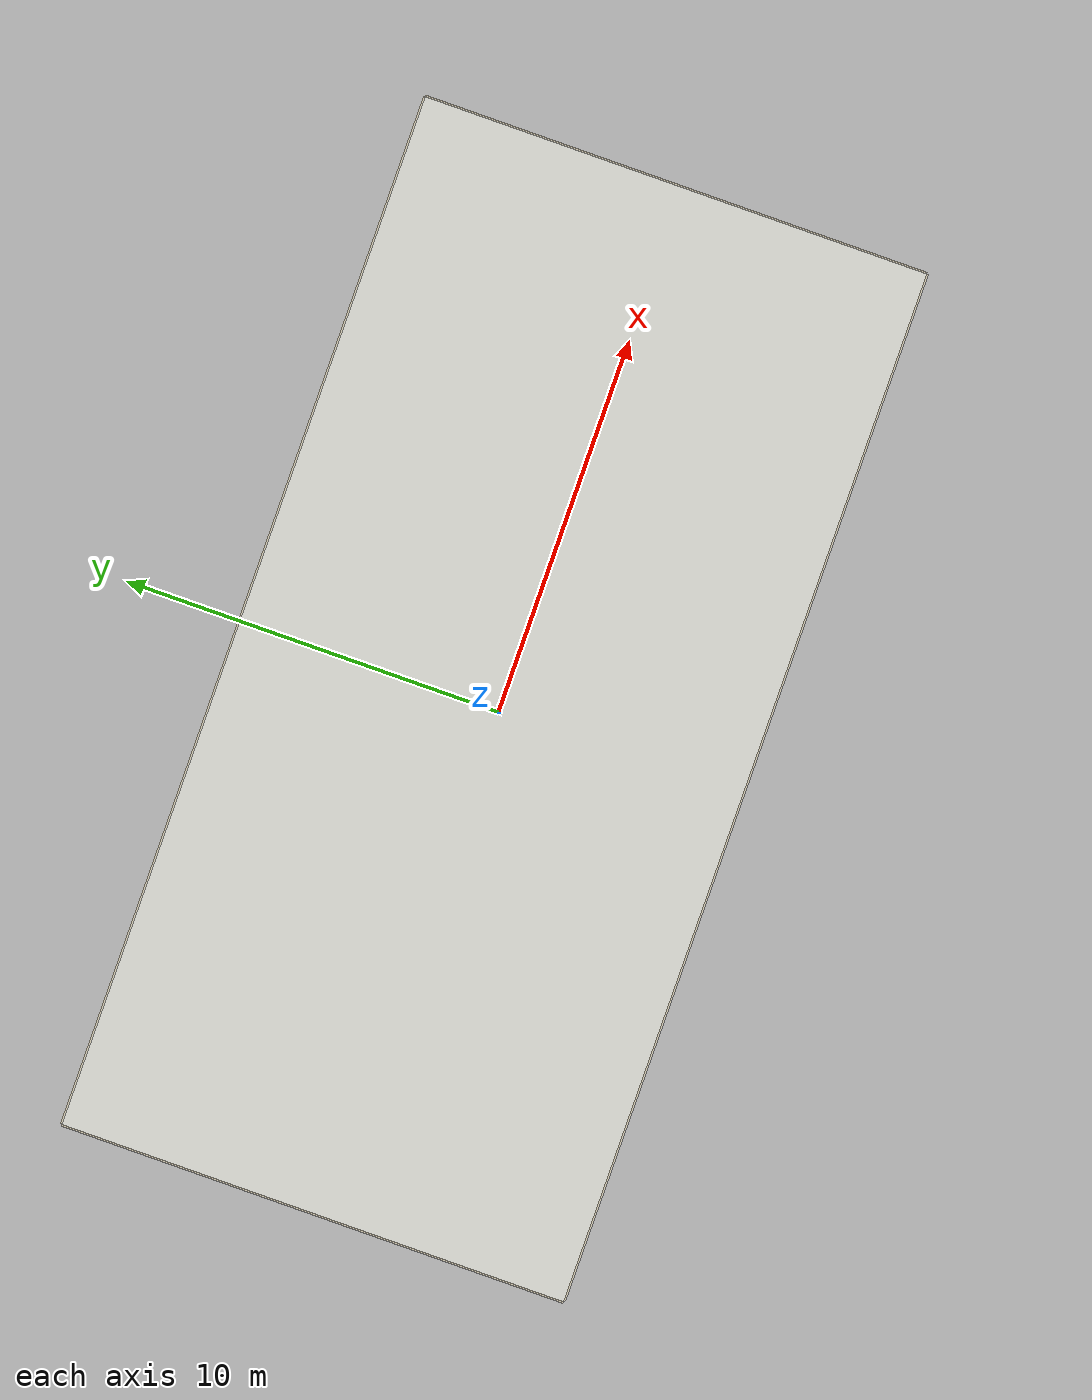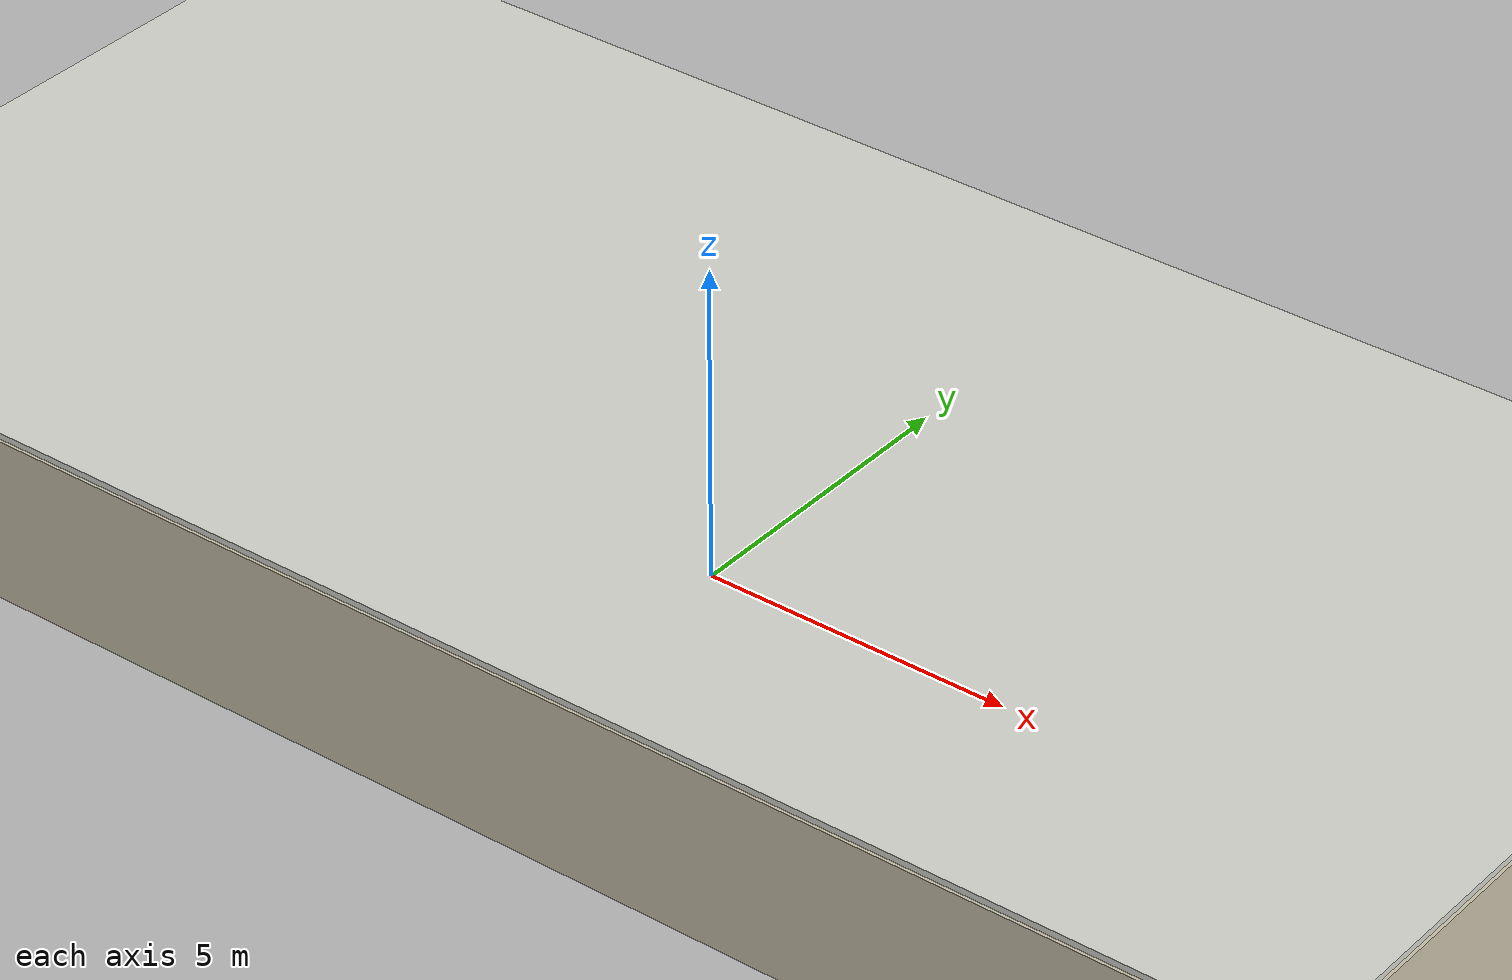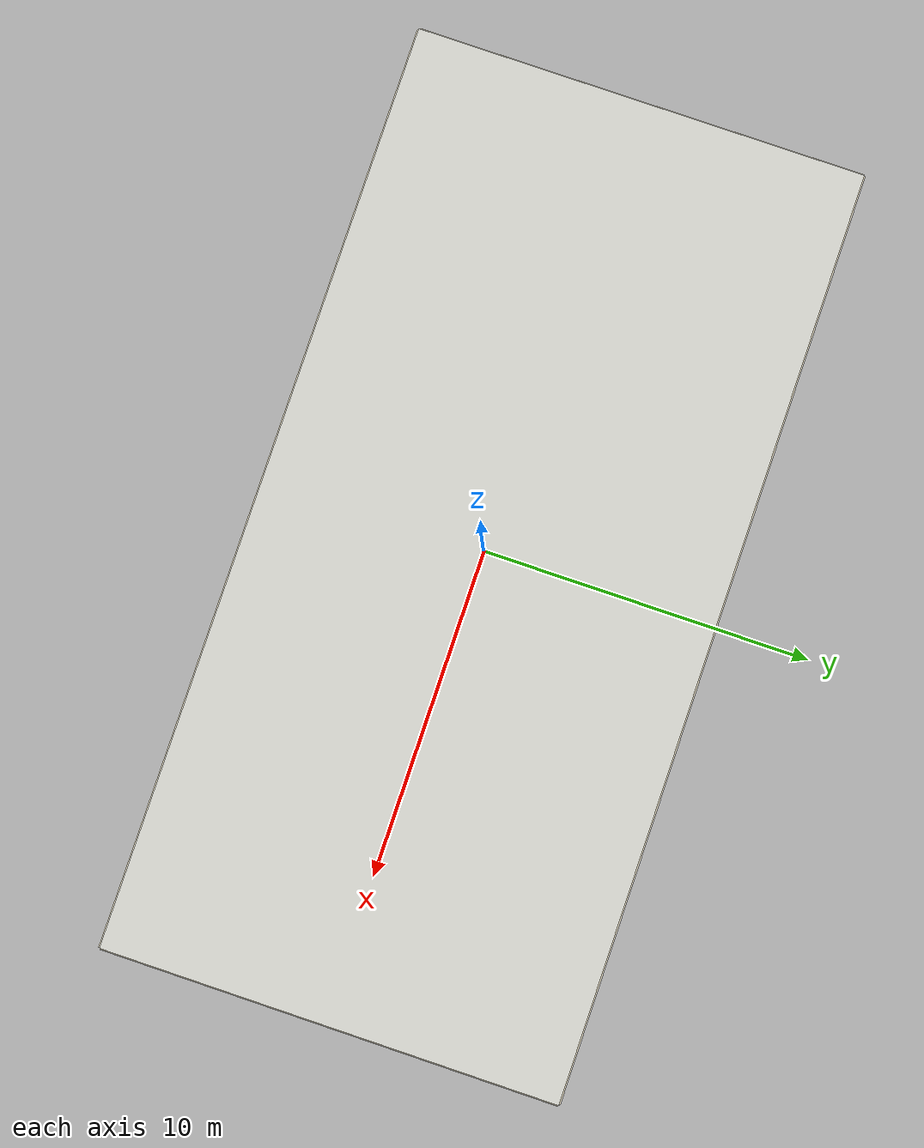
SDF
<?xml version="1.0" ?>
<sdf version='1.7'>
  <world name='default'>
    <plugin name='gazebo_ros_state' filename='libgazebo_ros_state.so'>
      <ros>
        <namespace>/</namespace>
      </ros>
      <update_rate>1000.0</update_rate>
    </plugin>

    <light name='sun' type='directional'>
      <cast_shadows>1</cast_shadows>
      <pose>0 0 10 0 -0 0</pose>
      <diffuse>0.28 0.28 0.27 1</diffuse>
      <specular>0.2 0.2 0.2 1</specular>
      <attenuation>
        <range>1000</range>
        <constant>0.9</constant>
        <linear>0.01</linear>
        <quadratic>0.001</quadratic>
      </attenuation>
      <direction>0.05 0.02 -1.0</direction>
      <spot>
        <inner_angle>0</inner_angle>
        <outer_angle>0</outer_angle>
        <falloff>0</falloff>
      </spot>
    </light>
    <model name='ground_plane'>
      <static>1</static>
      <link name='link'>
        <collision name='collision'>
          <geometry>
            <plane>
              <normal>0 0 1</normal>
              <size>100 100</size>
            </plane>
          </geometry>
          <surface>
            <friction>
              <ode>
                <mu>100</mu>
                <mu2>50</mu2>
              </ode>
              <torsional>
                <ode/>
              </torsional>
            </friction>
            <contact>
              <ode/>
            </contact>
            <bounce/>
          </surface>
          <max_contacts>10</max_contacts>
        </collision>
        <self_collide>0</self_collide>
        <enable_wind>0</enable_wind>
        <kinematic>0</kinematic>
      </link>
    </model>
    <gravity>0 0 -9.8</gravity>
    <magnetic_field>6e-06 2.3e-05 -4.2e-05</magnetic_field>
    <atmosphere type='adiabatic'/>
    <physics type='ode'>
      <max_step_size>0.001</max_step_size>
      <real_time_factor>1</real_time_factor>
      <real_time_update_rate>1000</real_time_update_rate>
    </physics>
    <scene>
      <ambient>0.81 0.81 0.79 1</ambient>
      <background>0.80 0.77 0.68 1</background>
      <shadows>1</shadows>
    </scene>
    <audio>
      <device>default</device>
    </audio>
    <wind/>
    <spherical_coordinates>
      <surface_model>EARTH_WGS84</surface_model>
      <latitude_deg>0</latitude_deg>
      <longitude_deg>0</longitude_deg>
      <elevation>0</elevation>
      <heading_deg>0</heading_deg>
    </spherical_coordinates>
    <model name='lab_05'>
    <static>1</static>
    <pose>0 0 0.001 0 0 0</pose>
    <link name='floor'>
      <visual name='floor_visual'>
        <cast_shadows>0</cast_shadows>
        <geometry><mesh><uri>model://lab_05/meshes/floor.obj</uri></mesh></geometry>
      </visual>
    </link>
    <link name='ducts'>
      <visual name='ducts_visual'>
        <geometry><mesh><uri>model://lab_05/meshes/ducts.obj</uri></mesh></geometry>
      </visual>
      <collision name='ducts_collision'>
        <geometry><mesh><uri>model://lab_05/meshes/ducts.obj</uri></mesh></geometry>
      </collision>
    </link>
    <link name='wall_0'>
      <pose>0.292 6.840 1.350 0 0 0.000</pose>
      <visual name='wall_0_visual'>
        <cast_shadows>0</cast_shadows>
        <geometry><box><size>27.137 0.100 2.700</size></box></geometry>
        <material><ambient>0.80 0.77 0.68 1</ambient><diffuse>0.80 0.77 0.68 1</diffuse></material>
      </visual>
    </link>
    <link name='wall_1'>
      <pose>0.292 -6.400 1.350 0 0 0.000</pose>
      <visual name='wall_1_visual'>
        <cast_shadows>0</cast_shadows>
        <geometry><box><size>27.137 0.100 2.700</size></box></geometry>
        <material><ambient>0.80 0.77 0.68 1</ambient><diffuse>0.80 0.77 0.68 1</diffuse></material>
      </visual>
    </link>
    <link name='wall_2'>
      <pose>-13.277 0.220 1.350 0 0 0.000</pose>
      <visual name='wall_2_visual'>
        <cast_shadows>0</cast_shadows>
        <geometry><box><size>0.100 13.240 2.700</size></box></geometry>
        <material><ambient>0.80 0.77 0.68 1</ambient><diffuse>0.80 0.77 0.68 1</diffuse></material>
      </visual>
    </link>
    <link name='wall_3'>
      <pose>13.860 0.220 1.350 0 0 0.000</pose>
      <visual name='wall_3_visual'>
        <cast_shadows>0</cast_shadows>
        <geometry><box><size>0.100 13.240 2.700</size></box></geometry>
        <material><ambient>0.80 0.77 0.68 1</ambient><diffuse>0.80 0.77 0.68 1</diffuse></material>
      </visual>
    </link>
    <link name='ceiling'>
      <pose>0.292 0.220 2.750 0 0 0.000</pose>
      <visual name='ceiling_visual'>
        <cast_shadows>0</cast_shadows>
        <geometry><box><size>27.137 13.240 0.100</size></box></geometry>
        <material><ambient>0.85 0.85 0.82 1</ambient><diffuse>0.85 0.85 0.82 1</diffuse></material>
      </visual>
    </link>
    <link name='panel_0_0'>
      <pose>-11.777 -4.900 2.690 0 0 0.000</pose>
      <visual name='panel_0_0_visual'>
        <cast_shadows>0</cast_shadows>
        <geometry><box><size>1.200 0.600 0.020</size></box></geometry>
        <material><ambient>1.00 1.00 1.00 1</ambient><diffuse>1.00 1.00 1.00 1</diffuse><emissive>1.00 1.00 1.00 1</emissive></material>
      </visual>
    </link>
    <link name='panel_0_1'>
      <pose>-11.777 -2.500 2.690 0 0 0.000</pose>
      <visual name='panel_0_1_visual'>
        <cast_shadows>0</cast_shadows>
        <geometry><box><size>1.200 0.600 0.020</size></box></geometry>
        <material><ambient>1.00 1.00 1.00 1</ambient><diffuse>1.00 1.00 1.00 1</diffuse><emissive>1.00 1.00 1.00 1</emissive></material>
      </visual>
    </link>
    <link name='panel_0_2'>
      <pose>-11.777 -0.100 2.690 0 0 0.000</pose>
      <visual name='panel_0_2_visual'>
        <cast_shadows>0</cast_shadows>
        <geometry><box><size>1.200 0.600 0.020</size></box></geometry>
        <material><ambient>1.00 1.00 1.00 1</ambient><diffuse>1.00 1.00 1.00 1</diffuse><emissive>1.00 1.00 1.00 1</emissive></material>
      </visual>
    </link>
    <link name='panel_0_3'>
      <pose>-11.777 2.300 2.690 0 0 0.000</pose>
      <visual name='panel_0_3_visual'>
        <cast_shadows>0</cast_shadows>
        <geometry><box><size>1.200 0.600 0.020</size></box></geometry>
        <material><ambient>1.00 1.00 1.00 1</ambient><diffuse>1.00 1.00 1.00 1</diffuse><emissive>1.00 1.00 1.00 1</emissive></material>
      </visual>
    </link>
    <link name='panel_0_4'>
      <pose>-11.777 4.700 2.690 0 0 0.000</pose>
      <visual name='panel_0_4_visual'>
        <cast_shadows>0</cast_shadows>
        <geometry><box><size>1.200 0.600 0.020</size></box></geometry>
        <material><ambient>1.00 1.00 1.00 1</ambient><diffuse>1.00 1.00 1.00 1</diffuse><emissive>1.00 1.00 1.00 1</emissive></material>
      </visual>
    </link>
    <link name='panel_1_0'>
      <pose>-9.377 -4.900 2.690 0 0 0.000</pose>
      <visual name='panel_1_0_visual'>
        <cast_shadows>0</cast_shadows>
        <geometry><box><size>1.200 0.600 0.020</size></box></geometry>
        <material><ambient>1.00 1.00 1.00 1</ambient><diffuse>1.00 1.00 1.00 1</diffuse><emissive>1.00 1.00 1.00 1</emissive></material>
      </visual>
    </link>
    <link name='panel_1_1'>
      <pose>-9.377 -2.500 2.690 0 0 0.000</pose>
      <visual name='panel_1_1_visual'>
        <cast_shadows>0</cast_shadows>
        <geometry><box><size>1.200 0.600 0.020</size></box></geometry>
        <material><ambient>1.00 1.00 1.00 1</ambient><diffuse>1.00 1.00 1.00 1</diffuse><emissive>1.00 1.00 1.00 1</emissive></material>
      </visual>
    </link>
    <link name='panel_1_2'>
      <pose>-9.377 -0.100 2.690 0 0 0.000</pose>
      <visual name='panel_1_2_visual'>
        <cast_shadows>0</cast_shadows>
        <geometry><box><size>1.200 0.600 0.020</size></box></geometry>
        <material><ambient>1.00 1.00 1.00 1</ambient><diffuse>1.00 1.00 1.00 1</diffuse><emissive>1.00 1.00 1.00 1</emissive></material>
      </visual>
    </link>
    <link name='panel_1_3'>
      <pose>-9.377 2.300 2.690 0 0 0.000</pose>
      <visual name='panel_1_3_visual'>
        <cast_shadows>0</cast_shadows>
        <geometry><box><size>1.200 0.600 0.020</size></box></geometry>
        <material><ambient>1.00 1.00 1.00 1</ambient><diffuse>1.00 1.00 1.00 1</diffuse><emissive>1.00 1.00 1.00 1</emissive></material>
      </visual>
    </link>
    <link name='panel_1_4'>
      <pose>-9.377 4.700 2.690 0 0 0.000</pose>
      <visual name='panel_1_4_visual'>
        <cast_shadows>0</cast_shadows>
        <geometry><box><size>1.200 0.600 0.020</size></box></geometry>
        <material><ambient>1.00 1.00 1.00 1</ambient><diffuse>1.00 1.00 1.00 1</diffuse><emissive>1.00 1.00 1.00 1</emissive></material>
      </visual>
    </link>
    <link name='panel_2_0'>
      <pose>-6.977 -4.900 2.690 0 0 0.000</pose>
      <visual name='panel_2_0_visual'>
        <cast_shadows>0</cast_shadows>
        <geometry><box><size>1.200 0.600 0.020</size></box></geometry>
        <material><ambient>1.00 1.00 1.00 1</ambient><diffuse>1.00 1.00 1.00 1</diffuse><emissive>1.00 1.00 1.00 1</emissive></material>
      </visual>
    </link>
    <link name='panel_2_1'>
      <pose>-6.977 -2.500 2.690 0 0 0.000</pose>
      <visual name='panel_2_1_visual'>
        <cast_shadows>0</cast_shadows>
        <geometry><box><size>1.200 0.600 0.020</size></box></geometry>
        <material><ambient>1.00 1.00 1.00 1</ambient><diffuse>1.00 1.00 1.00 1</diffuse><emissive>1.00 1.00 1.00 1</emissive></material>
      </visual>
    </link>
    <link name='panel_2_2'>
      <pose>-6.977 -0.100 2.690 0 0 0.000</pose>
      <visual name='panel_2_2_visual'>
        <cast_shadows>0</cast_shadows>
        <geometry><box><size>1.200 0.600 0.020</size></box></geometry>
        <material><ambient>1.00 1.00 1.00 1</ambient><diffuse>1.00 1.00 1.00 1</diffuse><emissive>1.00 1.00 1.00 1</emissive></material>
      </visual>
    </link>
    <link name='panel_2_3'>
      <pose>-6.977 2.300 2.690 0 0 0.000</pose>
      <visual name='panel_2_3_visual'>
        <cast_shadows>0</cast_shadows>
        <geometry><box><size>1.200 0.600 0.020</size></box></geometry>
        <material><ambient>1.00 1.00 1.00 1</ambient><diffuse>1.00 1.00 1.00 1</diffuse><emissive>1.00 1.00 1.00 1</emissive></material>
      </visual>
    </link>
    <link name='panel_2_4'>
      <pose>-6.977 4.700 2.690 0 0 0.000</pose>
      <visual name='panel_2_4_visual'>
        <cast_shadows>0</cast_shadows>
        <geometry><box><size>1.200 0.600 0.020</size></box></geometry>
        <material><ambient>1.00 1.00 1.00 1</ambient><diffuse>1.00 1.00 1.00 1</diffuse><emissive>1.00 1.00 1.00 1</emissive></material>
      </visual>
    </link>
    <link name='panel_3_0'>
      <pose>-4.577 -4.900 2.690 0 0 0.000</pose>
      <visual name='panel_3_0_visual'>
        <cast_shadows>0</cast_shadows>
        <geometry><box><size>1.200 0.600 0.020</size></box></geometry>
        <material><ambient>1.00 1.00 1.00 1</ambient><diffuse>1.00 1.00 1.00 1</diffuse><emissive>1.00 1.00 1.00 1</emissive></material>
      </visual>
    </link>
    <link name='panel_3_1'>
      <pose>-4.577 -2.500 2.690 0 0 0.000</pose>
      <visual name='panel_3_1_visual'>
        <cast_shadows>0</cast_shadows>
        <geometry><box><size>1.200 0.600 0.020</size></box></geometry>
        <material><ambient>1.00 1.00 1.00 1</ambient><diffuse>1.00 1.00 1.00 1</diffuse><emissive>1.00 1.00 1.00 1</emissive></material>
      </visual>
    </link>
    <link name='panel_3_2'>
      <pose>-4.577 -0.100 2.690 0 0 0.000</pose>
      <visual name='panel_3_2_visual'>
        <cast_shadows>0</cast_shadows>
        <geometry><box><size>1.200 0.600 0.020</size></box></geometry>
        <material><ambient>1.00 1.00 1.00 1</ambient><diffuse>1.00 1.00 1.00 1</diffuse><emissive>1.00 1.00 1.00 1</emissive></material>
      </visual>
    </link>
    <link name='panel_3_3'>
      <pose>-4.577 2.300 2.690 0 0 0.000</pose>
      <visual name='panel_3_3_visual'>
        <cast_shadows>0</cast_shadows>
        <geometry><box><size>1.200 0.600 0.020</size></box></geometry>
        <material><ambient>1.00 1.00 1.00 1</ambient><diffuse>1.00 1.00 1.00 1</diffuse><emissive>1.00 1.00 1.00 1</emissive></material>
      </visual>
    </link>
    <link name='panel_3_4'>
      <pose>-4.577 4.700 2.690 0 0 0.000</pose>
      <visual name='panel_3_4_visual'>
        <cast_shadows>0</cast_shadows>
        <geometry><box><size>1.200 0.600 0.020</size></box></geometry>
        <material><ambient>1.00 1.00 1.00 1</ambient><diffuse>1.00 1.00 1.00 1</diffuse><emissive>1.00 1.00 1.00 1</emissive></material>
      </visual>
    </link>
    <link name='panel_4_0'>
      <pose>-2.177 -4.900 2.690 0 0 0.000</pose>
      <visual name='panel_4_0_visual'>
        <cast_shadows>0</cast_shadows>
        <geometry><box><size>1.200 0.600 0.020</size></box></geometry>
        <material><ambient>1.00 1.00 1.00 1</ambient><diffuse>1.00 1.00 1.00 1</diffuse><emissive>1.00 1.00 1.00 1</emissive></material>
      </visual>
    </link>
    <link name='panel_4_1'>
      <pose>-2.177 -2.500 2.690 0 0 0.000</pose>
      <visual name='panel_4_1_visual'>
        <cast_shadows>0</cast_shadows>
        <geometry><box><size>1.200 0.600 0.020</size></box></geometry>
        <material><ambient>1.00 1.00 1.00 1</ambient><diffuse>1.00 1.00 1.00 1</diffuse><emissive>1.00 1.00 1.00 1</emissive></material>
      </visual>
    </link>
    <link name='panel_4_2'>
      <pose>-2.177 -0.100 2.690 0 0 0.000</pose>
      <visual name='panel_4_2_visual'>
        <cast_shadows>0</cast_shadows>
        <geometry><box><size>1.200 0.600 0.020</size></box></geometry>
        <material><ambient>1.00 1.00 1.00 1</ambient><diffuse>1.00 1.00 1.00 1</diffuse><emissive>1.00 1.00 1.00 1</emissive></material>
      </visual>
    </link>
    <link name='panel_4_3'>
      <pose>-2.177 2.300 2.690 0 0 0.000</pose>
      <visual name='panel_4_3_visual'>
        <cast_shadows>0</cast_shadows>
        <geometry><box><size>1.200 0.600 0.020</size></box></geometry>
        <material><ambient>1.00 1.00 1.00 1</ambient><diffuse>1.00 1.00 1.00 1</diffuse><emissive>1.00 1.00 1.00 1</emissive></material>
      </visual>
    </link>
    <link name='panel_4_4'>
      <pose>-2.177 4.700 2.690 0 0 0.000</pose>
      <visual name='panel_4_4_visual'>
        <cast_shadows>0</cast_shadows>
        <geometry><box><size>1.200 0.600 0.020</size></box></geometry>
        <material><ambient>1.00 1.00 1.00 1</ambient><diffuse>1.00 1.00 1.00 1</diffuse><emissive>1.00 1.00 1.00 1</emissive></material>
      </visual>
    </link>
    <link name='panel_5_0'>
      <pose>0.223 -4.900 2.690 0 0 0.000</pose>
      <visual name='panel_5_0_visual'>
        <cast_shadows>0</cast_shadows>
        <geometry><box><size>1.200 0.600 0.020</size></box></geometry>
        <material><ambient>1.00 1.00 1.00 1</ambient><diffuse>1.00 1.00 1.00 1</diffuse><emissive>1.00 1.00 1.00 1</emissive></material>
      </visual>
    </link>
    <link name='panel_5_1'>
      <pose>0.223 -2.500 2.690 0 0 0.000</pose>
      <visual name='panel_5_1_visual'>
        <cast_shadows>0</cast_shadows>
        <geometry><box><size>1.200 0.600 0.020</size></box></geometry>
        <material><ambient>1.00 1.00 1.00 1</ambient><diffuse>1.00 1.00 1.00 1</diffuse><emissive>1.00 1.00 1.00 1</emissive></material>
      </visual>
    </link>
    <link name='panel_5_2'>
      <pose>0.223 -0.100 2.690 0 0 0.000</pose>
      <visual name='panel_5_2_visual'>
        <cast_shadows>0</cast_shadows>
        <geometry><box><size>1.200 0.600 0.020</size></box></geometry>
        <material><ambient>1.00 1.00 1.00 1</ambient><diffuse>1.00 1.00 1.00 1</diffuse><emissive>1.00 1.00 1.00 1</emissive></material>
      </visual>
    </link>
    <link name='panel_5_3'>
      <pose>0.223 2.300 2.690 0 0 0.000</pose>
      <visual name='panel_5_3_visual'>
        <cast_shadows>0</cast_shadows>
        <geometry><box><size>1.200 0.600 0.020</size></box></geometry>
        <material><ambient>1.00 1.00 1.00 1</ambient><diffuse>1.00 1.00 1.00 1</diffuse><emissive>1.00 1.00 1.00 1</emissive></material>
      </visual>
    </link>
    <link name='panel_5_4'>
      <pose>0.223 4.700 2.690 0 0 0.000</pose>
      <visual name='panel_5_4_visual'>
        <cast_shadows>0</cast_shadows>
        <geometry><box><size>1.200 0.600 0.020</size></box></geometry>
        <material><ambient>1.00 1.00 1.00 1</ambient><diffuse>1.00 1.00 1.00 1</diffuse><emissive>1.00 1.00 1.00 1</emissive></material>
      </visual>
    </link>
    <link name='panel_6_0'>
      <pose>2.623 -4.900 2.690 0 0 0.000</pose>
      <visual name='panel_6_0_visual'>
        <cast_shadows>0</cast_shadows>
        <geometry><box><size>1.200 0.600 0.020</size></box></geometry>
        <material><ambient>1.00 1.00 1.00 1</ambient><diffuse>1.00 1.00 1.00 1</diffuse><emissive>1.00 1.00 1.00 1</emissive></material>
      </visual>
    </link>
    <link name='panel_6_1'>
      <pose>2.623 -2.500 2.690 0 0 0.000</pose>
      <visual name='panel_6_1_visual'>
        <cast_shadows>0</cast_shadows>
        <geometry><box><size>1.200 0.600 0.020</size></box></geometry>
        <material><ambient>1.00 1.00 1.00 1</ambient><diffuse>1.00 1.00 1.00 1</diffuse><emissive>1.00 1.00 1.00 1</emissive></material>
      </visual>
    </link>
    <link name='panel_6_2'>
      <pose>2.623 -0.100 2.690 0 0 0.000</pose>
      <visual name='panel_6_2_visual'>
        <cast_shadows>0</cast_shadows>
        <geometry><box><size>1.200 0.600 0.020</size></box></geometry>
        <material><ambient>1.00 1.00 1.00 1</ambient><diffuse>1.00 1.00 1.00 1</diffuse><emissive>1.00 1.00 1.00 1</emissive></material>
      </visual>
    </link>
    <link name='panel_6_3'>
      <pose>2.623 2.300 2.690 0 0 0.000</pose>
      <visual name='panel_6_3_visual'>
        <cast_shadows>0</cast_shadows>
        <geometry><box><size>1.200 0.600 0.020</size></box></geometry>
        <material><ambient>1.00 1.00 1.00 1</ambient><diffuse>1.00 1.00 1.00 1</diffuse><emissive>1.00 1.00 1.00 1</emissive></material>
      </visual>
    </link>
    <link name='panel_6_4'>
      <pose>2.623 4.700 2.690 0 0 0.000</pose>
      <visual name='panel_6_4_visual'>
        <cast_shadows>0</cast_shadows>
        <geometry><box><size>1.200 0.600 0.020</size></box></geometry>
        <material><ambient>1.00 1.00 1.00 1</ambient><diffuse>1.00 1.00 1.00 1</diffuse><emissive>1.00 1.00 1.00 1</emissive></material>
      </visual>
    </link>
    <link name='panel_7_0'>
      <pose>5.023 -4.900 2.690 0 0 0.000</pose>
      <visual name='panel_7_0_visual'>
        <cast_shadows>0</cast_shadows>
        <geometry><box><size>1.200 0.600 0.020</size></box></geometry>
        <material><ambient>1.00 1.00 1.00 1</ambient><diffuse>1.00 1.00 1.00 1</diffuse><emissive>1.00 1.00 1.00 1</emissive></material>
      </visual>
    </link>
    <link name='panel_7_1'>
      <pose>5.023 -2.500 2.690 0 0 0.000</pose>
      <visual name='panel_7_1_visual'>
        <cast_shadows>0</cast_shadows>
        <geometry><box><size>1.200 0.600 0.020</size></box></geometry>
        <material><ambient>1.00 1.00 1.00 1</ambient><diffuse>1.00 1.00 1.00 1</diffuse><emissive>1.00 1.00 1.00 1</emissive></material>
      </visual>
    </link>
    <link name='panel_7_2'>
      <pose>5.023 -0.100 2.690 0 0 0.000</pose>
      <visual name='panel_7_2_visual'>
        <cast_shadows>0</cast_shadows>
        <geometry><box><size>1.200 0.600 0.020</size></box></geometry>
        <material><ambient>1.00 1.00 1.00 1</ambient><diffuse>1.00 1.00 1.00 1</diffuse><emissive>1.00 1.00 1.00 1</emissive></material>
      </visual>
    </link>
    <link name='panel_7_3'>
      <pose>5.023 2.300 2.690 0 0 0.000</pose>
      <visual name='panel_7_3_visual'>
        <cast_shadows>0</cast_shadows>
        <geometry><box><size>1.200 0.600 0.020</size></box></geometry>
        <material><ambient>1.00 1.00 1.00 1</ambient><diffuse>1.00 1.00 1.00 1</diffuse><emissive>1.00 1.00 1.00 1</emissive></material>
      </visual>
    </link>
    <link name='panel_7_4'>
      <pose>5.023 4.700 2.690 0 0 0.000</pose>
      <visual name='panel_7_4_visual'>
        <cast_shadows>0</cast_shadows>
        <geometry><box><size>1.200 0.600 0.020</size></box></geometry>
        <material><ambient>1.00 1.00 1.00 1</ambient><diffuse>1.00 1.00 1.00 1</diffuse><emissive>1.00 1.00 1.00 1</emissive></material>
      </visual>
    </link>
    <link name='panel_8_0'>
      <pose>7.423 -4.900 2.690 0 0 0.000</pose>
      <visual name='panel_8_0_visual'>
        <cast_shadows>0</cast_shadows>
        <geometry><box><size>1.200 0.600 0.020</size></box></geometry>
        <material><ambient>1.00 1.00 1.00 1</ambient><diffuse>1.00 1.00 1.00 1</diffuse><emissive>1.00 1.00 1.00 1</emissive></material>
      </visual>
    </link>
    <link name='panel_8_1'>
      <pose>7.423 -2.500 2.690 0 0 0.000</pose>
      <visual name='panel_8_1_visual'>
        <cast_shadows>0</cast_shadows>
        <geometry><box><size>1.200 0.600 0.020</size></box></geometry>
        <material><ambient>1.00 1.00 1.00 1</ambient><diffuse>1.00 1.00 1.00 1</diffuse><emissive>1.00 1.00 1.00 1</emissive></material>
      </visual>
    </link>
    <link name='panel_8_2'>
      <pose>7.423 -0.100 2.690 0 0 0.000</pose>
      <visual name='panel_8_2_visual'>
        <cast_shadows>0</cast_shadows>
        <geometry><box><size>1.200 0.600 0.020</size></box></geometry>
        <material><ambient>1.00 1.00 1.00 1</ambient><diffuse>1.00 1.00 1.00 1</diffuse><emissive>1.00 1.00 1.00 1</emissive></material>
      </visual>
    </link>
    <link name='panel_8_3'>
      <pose>7.423 2.300 2.690 0 0 0.000</pose>
      <visual name='panel_8_3_visual'>
        <cast_shadows>0</cast_shadows>
        <geometry><box><size>1.200 0.600 0.020</size></box></geometry>
        <material><ambient>1.00 1.00 1.00 1</ambient><diffuse>1.00 1.00 1.00 1</diffuse><emissive>1.00 1.00 1.00 1</emissive></material>
      </visual>
    </link>
    <link name='panel_8_4'>
      <pose>7.423 4.700 2.690 0 0 0.000</pose>
      <visual name='panel_8_4_visual'>
        <cast_shadows>0</cast_shadows>
        <geometry><box><size>1.200 0.600 0.020</size></box></geometry>
        <material><ambient>1.00 1.00 1.00 1</ambient><diffuse>1.00 1.00 1.00 1</diffuse><emissive>1.00 1.00 1.00 1</emissive></material>
      </visual>
    </link>
    <link name='panel_9_0'>
      <pose>9.823 -4.900 2.690 0 0 0.000</pose>
      <visual name='panel_9_0_visual'>
        <cast_shadows>0</cast_shadows>
        <geometry><box><size>1.200 0.600 0.020</size></box></geometry>
        <material><ambient>1.00 1.00 1.00 1</ambient><diffuse>1.00 1.00 1.00 1</diffuse><emissive>1.00 1.00 1.00 1</emissive></material>
      </visual>
    </link>
    <link name='panel_9_1'>
      <pose>9.823 -2.500 2.690 0 0 0.000</pose>
      <visual name='panel_9_1_visual'>
        <cast_shadows>0</cast_shadows>
        <geometry><box><size>1.200 0.600 0.020</size></box></geometry>
        <material><ambient>1.00 1.00 1.00 1</ambient><diffuse>1.00 1.00 1.00 1</diffuse><emissive>1.00 1.00 1.00 1</emissive></material>
      </visual>
    </link>
    <link name='panel_9_2'>
      <pose>9.823 -0.100 2.690 0 0 0.000</pose>
      <visual name='panel_9_2_visual'>
        <cast_shadows>0</cast_shadows>
        <geometry><box><size>1.200 0.600 0.020</size></box></geometry>
        <material><ambient>1.00 1.00 1.00 1</ambient><diffuse>1.00 1.00 1.00 1</diffuse><emissive>1.00 1.00 1.00 1</emissive></material>
      </visual>
    </link>
    <link name='panel_9_3'>
      <pose>9.823 2.300 2.690 0 0 0.000</pose>
      <visual name='panel_9_3_visual'>
        <cast_shadows>0</cast_shadows>
        <geometry><box><size>1.200 0.600 0.020</size></box></geometry>
        <material><ambient>1.00 1.00 1.00 1</ambient><diffuse>1.00 1.00 1.00 1</diffuse><emissive>1.00 1.00 1.00 1</emissive></material>
      </visual>
    </link>
    <link name='panel_9_4'>
      <pose>9.823 4.700 2.690 0 0 0.000</pose>
      <visual name='panel_9_4_visual'>
        <cast_shadows>0</cast_shadows>
        <geometry><box><size>1.200 0.600 0.020</size></box></geometry>
        <material><ambient>1.00 1.00 1.00 1</ambient><diffuse>1.00 1.00 1.00 1</diffuse><emissive>1.00 1.00 1.00 1</emissive></material>
      </visual>
    </link>
    <link name='panel_10_0'>
      <pose>12.223 -4.900 2.690 0 0 0.000</pose>
      <visual name='panel_10_0_visual'>
        <cast_shadows>0</cast_shadows>
        <geometry><box><size>1.200 0.600 0.020</size></box></geometry>
        <material><ambient>1.00 1.00 1.00 1</ambient><diffuse>1.00 1.00 1.00 1</diffuse><emissive>1.00 1.00 1.00 1</emissive></material>
      </visual>
    </link>
    <link name='panel_10_1'>
      <pose>12.223 -2.500 2.690 0 0 0.000</pose>
      <visual name='panel_10_1_visual'>
        <cast_shadows>0</cast_shadows>
        <geometry><box><size>1.200 0.600 0.020</size></box></geometry>
        <material><ambient>1.00 1.00 1.00 1</ambient><diffuse>1.00 1.00 1.00 1</diffuse><emissive>1.00 1.00 1.00 1</emissive></material>
      </visual>
    </link>
    <link name='panel_10_2'>
      <pose>12.223 -0.100 2.690 0 0 0.000</pose>
      <visual name='panel_10_2_visual'>
        <cast_shadows>0</cast_shadows>
        <geometry><box><size>1.200 0.600 0.020</size></box></geometry>
        <material><ambient>1.00 1.00 1.00 1</ambient><diffuse>1.00 1.00 1.00 1</diffuse><emissive>1.00 1.00 1.00 1</emissive></material>
      </visual>
    </link>
    <link name='panel_10_3'>
      <pose>12.223 2.300 2.690 0 0 0.000</pose>
      <visual name='panel_10_3_visual'>
        <cast_shadows>0</cast_shadows>
        <geometry><box><size>1.200 0.600 0.020</size></box></geometry>
        <material><ambient>1.00 1.00 1.00 1</ambient><diffuse>1.00 1.00 1.00 1</diffuse><emissive>1.00 1.00 1.00 1</emissive></material>
      </visual>
    </link>
    <link name='panel_10_4'>
      <pose>12.223 4.700 2.690 0 0 0.000</pose>
      <visual name='panel_10_4_visual'>
        <cast_shadows>0</cast_shadows>
        <geometry><box><size>1.200 0.600 0.020</size></box></geometry>
        <material><ambient>1.00 1.00 1.00 1</ambient><diffuse>1.00 1.00 1.00 1</diffuse><emissive>1.00 1.00 1.00 1</emissive></material>
      </visual>
    </link>
    <link name='p0'>
      <pose>-10.685 6.555 0.925 0 0 0.000</pose>
      <visual name='p0_visual'>
        <cast_shadows>0</cast_shadows>
        <geometry><box><size>0.300 0.450 1.850</size></box></geometry>
        <material><ambient>0.55 0.57 0.58 1</ambient><diffuse>0.55 0.57 0.58 1</diffuse></material>
      </visual>
    </link>
    <link name='p1'>
      <pose>-10.375 6.555 0.925 0 0 0.000</pose>
      <visual name='p1_visual'>
        <cast_shadows>0</cast_shadows>
        <geometry><box><size>0.300 0.450 1.850</size></box></geometry>
        <material><ambient>0.55 0.57 0.58 1</ambient><diffuse>0.55 0.57 0.58 1</diffuse></material>
      </visual>
    </link>
    <link name='p2'>
      <pose>-10.065 6.555 0.925 0 0 0.000</pose>
      <visual name='p2_visual'>
        <cast_shadows>0</cast_shadows>
        <geometry><box><size>0.300 0.450 1.850</size></box></geometry>
        <material><ambient>0.55 0.57 0.58 1</ambient><diffuse>0.55 0.57 0.58 1</diffuse></material>
      </visual>
    </link>
    <link name='p3'>
      <pose>-9.755 6.555 0.925 0 0 0.000</pose>
      <visual name='p3_visual'>
        <cast_shadows>0</cast_shadows>
        <geometry><box><size>0.300 0.450 1.850</size></box></geometry>
        <material><ambient>0.55 0.57 0.58 1</ambient><diffuse>0.55 0.57 0.58 1</diffuse></material>
      </visual>
    </link>
    <link name='p4'>
      <pose>-7.504 6.755 0.375 0 0 0.000</pose>
      <visual name='p4_visual'>
        <cast_shadows>0</cast_shadows>
        <geometry><box><size>1.800 0.050 0.750</size></box></geometry>
        <material><ambient>0.93 0.93 0.92 1</ambient><diffuse>0.93 0.93 0.92 1</diffuse></material>
      </visual>
    </link>
    <link name='p5'>
      <pose>-4.932 6.555 0.925 0 0 0.000</pose>
      <visual name='p5_visual'>
        <cast_shadows>0</cast_shadows>
        <geometry><box><size>0.300 0.450 1.850</size></box></geometry>
        <material><ambient>0.55 0.57 0.58 1</ambient><diffuse>0.55 0.57 0.58 1</diffuse></material>
      </visual>
    </link>
    <link name='p6'>
      <pose>-4.622 6.555 0.925 0 0 0.000</pose>
      <visual name='p6_visual'>
        <cast_shadows>0</cast_shadows>
        <geometry><box><size>0.300 0.450 1.850</size></box></geometry>
        <material><ambient>0.55 0.57 0.58 1</ambient><diffuse>0.55 0.57 0.58 1</diffuse></material>
      </visual>
    </link>
    <link name='p7'>
      <pose>-4.312 6.555 0.925 0 0 0.000</pose>
      <visual name='p7_visual'>
        <cast_shadows>0</cast_shadows>
        <geometry><box><size>0.300 0.450 1.850</size></box></geometry>
        <material><ambient>0.55 0.57 0.58 1</ambient><diffuse>0.55 0.57 0.58 1</diffuse></material>
      </visual>
    </link>
    <link name='p8'>
      <pose>-4.002 6.555 0.925 0 0 0.000</pose>
      <visual name='p8_visual'>
        <cast_shadows>0</cast_shadows>
        <geometry><box><size>0.300 0.450 1.850</size></box></geometry>
        <material><ambient>0.55 0.57 0.58 1</ambient><diffuse>0.55 0.57 0.58 1</diffuse></material>
      </visual>
    </link>
    <link name='p9'>
      <pose>-3.692 6.555 0.925 0 0 0.000</pose>
      <visual name='p9_visual'>
        <cast_shadows>0</cast_shadows>
        <geometry><box><size>0.300 0.450 1.850</size></box></geometry>
        <material><ambient>0.55 0.57 0.58 1</ambient><diffuse>0.55 0.57 0.58 1</diffuse></material>
      </visual>
    </link>
    <link name='p10'>
      <pose>-3.382 6.555 0.925 0 0 0.000</pose>
      <visual name='p10_visual'>
        <cast_shadows>0</cast_shadows>
        <geometry><box><size>0.300 0.450 1.850</size></box></geometry>
        <material><ambient>0.55 0.57 0.58 1</ambient><diffuse>0.55 0.57 0.58 1</diffuse></material>
      </visual>
    </link>
    <link name='p11'>
      <pose>-3.072 6.555 0.925 0 0 0.000</pose>
      <visual name='p11_visual'>
        <cast_shadows>0</cast_shadows>
        <geometry><box><size>0.300 0.450 1.850</size></box></geometry>
        <material><ambient>0.55 0.57 0.58 1</ambient><diffuse>0.55 0.57 0.58 1</diffuse></material>
      </visual>
    </link>
    <link name='p12'>
      <pose>-1.697 6.530 0.650 0 0 0.000</pose>
      <visual name='p12_visual'>
        <cast_shadows>0</cast_shadows>
        <geometry><box><size>0.900 0.500 1.300</size></box></geometry>
        <material><ambient>0.25 0.33 0.36 1</ambient><diffuse>0.25 0.33 0.36 1</diffuse></material>
      </visual>
    </link>
    <link name='p13'>
      <pose>0.258 6.755 0.375 0 0 0.000</pose>
      <visual name='p13_visual'>
        <cast_shadows>0</cast_shadows>
        <geometry><box><size>1.800 0.050 0.750</size></box></geometry>
        <material><ambient>0.93 0.93 0.92 1</ambient><diffuse>0.93 0.93 0.92 1</diffuse></material>
      </visual>
    </link>
    <link name='p14'>
      <pose>2.977 6.405 0.375 0 0 0.000</pose>
      <visual name='p14_visual'>
        <cast_shadows>0</cast_shadows>
        <geometry><box><size>1.500 0.750 0.750</size></box></geometry>
        <material><ambient>0.32 0.32 0.33 1</ambient><diffuse>0.32 0.32 0.33 1</diffuse></material>
      </visual>
    </link>
    <link name='p15'>
      <pose>5.242 6.405 0.375 0 0 0.000</pose>
      <visual name='p15_visual'>
        <cast_shadows>0</cast_shadows>
        <geometry><box><size>1.500 0.750 0.750</size></box></geometry>
        <material><ambient>0.32 0.32 0.33 1</ambient><diffuse>0.32 0.32 0.33 1</diffuse></material>
      </visual>
    </link>
    <link name='p16'>
      <pose>7.538 6.755 0.375 0 0 0.000</pose>
      <visual name='p16_visual'>
        <cast_shadows>0</cast_shadows>
        <geometry><box><size>1.800 0.050 0.750</size></box></geometry>
        <material><ambient>0.93 0.93 0.92 1</ambient><diffuse>0.93 0.93 0.92 1</diffuse></material>
      </visual>
    </link>
    <link name='p17'>
      <pose>10.220 6.405 0.375 0 0 0.000</pose>
      <visual name='p17_visual'>
        <cast_shadows>0</cast_shadows>
        <geometry><box><size>1.500 0.750 0.750</size></box></geometry>
        <material><ambient>0.32 0.32 0.33 1</ambient><diffuse>0.32 0.32 0.33 1</diffuse></material>
      </visual>
    </link>
    <link name='p18'>
      <pose>13.775 -4.606 0.375 0 0 0.000</pose>
      <visual name='p18_visual'>
        <cast_shadows>0</cast_shadows>
        <geometry><box><size>0.050 1.800 0.750</size></box></geometry>
        <material><ambient>0.93 0.93 0.92 1</ambient><diffuse>0.93 0.93 0.92 1</diffuse></material>
      </visual>
    </link>
    <link name='p19'>
      <pose>13.550 -2.376 0.225 0 0 0.000</pose>
      <visual name='p19_visual'>
        <cast_shadows>0</cast_shadows>
        <geometry><box><size>0.500 0.600 0.450</size></box></geometry>
        <material><ambient>0.62 0.45 0.28 1</ambient><diffuse>0.62 0.45 0.28 1</diffuse></material>
      </visual>
    </link>
    <link name='p20'>
      <pose>13.550 -2.376 0.675 0 0 0.000</pose>
      <visual name='p20_visual'>
        <cast_shadows>0</cast_shadows>
        <geometry><box><size>0.500 0.600 0.450</size></box></geometry>
        <material><ambient>0.62 0.45 0.28 1</ambient><diffuse>0.62 0.45 0.28 1</diffuse></material>
      </visual>
    </link>
    <link name='p21'>
      <pose>13.550 -2.376 1.125 0 0 0.000</pose>
      <visual name='p21_visual'>
        <cast_shadows>0</cast_shadows>
        <geometry><box><size>0.500 0.600 0.450</size></box></geometry>
        <material><ambient>0.62 0.45 0.28 1</ambient><diffuse>0.62 0.45 0.28 1</diffuse></material>
      </visual>
    </link>
    <link name='p22'>
      <pose>13.425 -1.225 0.375 0 0 0.000</pose>
      <visual name='p22_visual'>
        <cast_shadows>0</cast_shadows>
        <geometry><box><size>0.750 1.500 0.750</size></box></geometry>
        <material><ambient>0.32 0.32 0.33 1</ambient><diffuse>0.32 0.32 0.33 1</diffuse></material>
      </visual>
    </link>
    <link name='p23'>
      <pose>13.575 1.689 0.925 0 0 0.000</pose>
      <visual name='p23_visual'>
        <cast_shadows>0</cast_shadows>
        <geometry><box><size>0.450 0.300 1.850</size></box></geometry>
        <material><ambient>0.55 0.57 0.58 1</ambient><diffuse>0.55 0.57 0.58 1</diffuse></material>
      </visual>
    </link>
    <link name='p24'>
      <pose>13.575 1.999 0.925 0 0 0.000</pose>
      <visual name='p24_visual'>
        <cast_shadows>0</cast_shadows>
        <geometry><box><size>0.450 0.300 1.850</size></box></geometry>
        <material><ambient>0.55 0.57 0.58 1</ambient><diffuse>0.55 0.57 0.58 1</diffuse></material>
      </visual>
    </link>
    <link name='p25'>
      <pose>13.575 2.309 0.925 0 0 0.000</pose>
      <visual name='p25_visual'>
        <cast_shadows>0</cast_shadows>
        <geometry><box><size>0.450 0.300 1.850</size></box></geometry>
        <material><ambient>0.55 0.57 0.58 1</ambient><diffuse>0.55 0.57 0.58 1</diffuse></material>
      </visual>
    </link>
    <link name='p26'>
      <pose>13.575 2.619 0.925 0 0 0.000</pose>
      <visual name='p26_visual'>
        <cast_shadows>0</cast_shadows>
        <geometry><box><size>0.450 0.300 1.850</size></box></geometry>
        <material><ambient>0.55 0.57 0.58 1</ambient><diffuse>0.55 0.57 0.58 1</diffuse></material>
      </visual>
    </link>
    <link name='p27'>
      <pose>13.575 2.929 0.925 0 0 0.000</pose>
      <visual name='p27_visual'>
        <cast_shadows>0</cast_shadows>
        <geometry><box><size>0.450 0.300 1.850</size></box></geometry>
        <material><ambient>0.55 0.57 0.58 1</ambient><diffuse>0.55 0.57 0.58 1</diffuse></material>
      </visual>
    </link>
    <link name='p28'>
      <pose>13.575 3.239 0.925 0 0 0.000</pose>
      <visual name='p28_visual'>
        <cast_shadows>0</cast_shadows>
        <geometry><box><size>0.450 0.300 1.850</size></box></geometry>
        <material><ambient>0.55 0.57 0.58 1</ambient><diffuse>0.55 0.57 0.58 1</diffuse></material>
      </visual>
    </link>
    <link name='p29'>
      <pose>13.575 3.549 0.925 0 0 0.000</pose>
      <visual name='p29_visual'>
        <cast_shadows>0</cast_shadows>
        <geometry><box><size>0.450 0.300 1.850</size></box></geometry>
        <material><ambient>0.55 0.57 0.58 1</ambient><diffuse>0.55 0.57 0.58 1</diffuse></material>
      </visual>
    </link>
    <link name='p30'>
      <pose>13.425 4.787 0.375 0 0 0.000</pose>
      <visual name='p30_visual'>
        <cast_shadows>0</cast_shadows>
        <geometry><box><size>0.750 1.500 0.750</size></box></geometry>
        <material><ambient>0.32 0.32 0.33 1</ambient><diffuse>0.32 0.32 0.33 1</diffuse></material>
      </visual>
    </link>
    <link name='p31'>
      <pose>-10.612 -5.965 0.375 0 0 0.000</pose>
      <visual name='p31_visual'>
        <cast_shadows>0</cast_shadows>
        <geometry><box><size>1.500 0.750 0.750</size></box></geometry>
        <material><ambient>0.32 0.32 0.33 1</ambient><diffuse>0.32 0.32 0.33 1</diffuse></material>
      </visual>
    </link>
    <link name='p32'>
      <pose>-8.564 -6.315 0.375 0 0 0.000</pose>
      <visual name='p32_visual'>
        <cast_shadows>0</cast_shadows>
        <geometry><box><size>1.800 0.050 0.750</size></box></geometry>
        <material><ambient>0.93 0.93 0.92 1</ambient><diffuse>0.93 0.93 0.92 1</diffuse></material>
      </visual>
    </link>
    <link name='p33'>
      <pose>-5.791 -6.315 0.375 0 0 0.000</pose>
      <visual name='p33_visual'>
        <cast_shadows>0</cast_shadows>
        <geometry><box><size>1.800 0.050 0.750</size></box></geometry>
        <material><ambient>0.93 0.93 0.92 1</ambient><diffuse>0.93 0.93 0.92 1</diffuse></material>
      </visual>
    </link>
    <link name='p34'>
      <pose>-3.227 -6.090 0.650 0 0 0.000</pose>
      <visual name='p34_visual'>
        <cast_shadows>0</cast_shadows>
        <geometry><box><size>0.900 0.500 1.300</size></box></geometry>
        <material><ambient>0.25 0.33 0.36 1</ambient><diffuse>0.25 0.33 0.36 1</diffuse></material>
      </visual>
    </link>
    <link name='p35'>
      <pose>-1.460 -6.115 0.925 0 0 0.000</pose>
      <visual name='p35_visual'>
        <cast_shadows>0</cast_shadows>
        <geometry><box><size>0.300 0.450 1.850</size></box></geometry>
        <material><ambient>0.55 0.57 0.58 1</ambient><diffuse>0.55 0.57 0.58 1</diffuse></material>
      </visual>
    </link>
    <link name='p36'>
      <pose>-1.150 -6.115 0.925 0 0 0.000</pose>
      <visual name='p36_visual'>
        <cast_shadows>0</cast_shadows>
        <geometry><box><size>0.300 0.450 1.850</size></box></geometry>
        <material><ambient>0.55 0.57 0.58 1</ambient><diffuse>0.55 0.57 0.58 1</diffuse></material>
      </visual>
    </link>
    <link name='p37'>
      <pose>-0.840 -6.115 0.925 0 0 0.000</pose>
      <visual name='p37_visual'>
        <cast_shadows>0</cast_shadows>
        <geometry><box><size>0.300 0.450 1.850</size></box></geometry>
        <material><ambient>0.55 0.57 0.58 1</ambient><diffuse>0.55 0.57 0.58 1</diffuse></material>
      </visual>
    </link>
    <link name='p38'>
      <pose>-0.530 -6.115 0.925 0 0 0.000</pose>
      <visual name='p38_visual'>
        <cast_shadows>0</cast_shadows>
        <geometry><box><size>0.300 0.450 1.850</size></box></geometry>
        <material><ambient>0.55 0.57 0.58 1</ambient><diffuse>0.55 0.57 0.58 1</diffuse></material>
      </visual>
    </link>
    <link name='p39'>
      <pose>-0.220 -6.115 0.925 0 0 0.000</pose>
      <visual name='p39_visual'>
        <cast_shadows>0</cast_shadows>
        <geometry><box><size>0.300 0.450 1.850</size></box></geometry>
        <material><ambient>0.55 0.57 0.58 1</ambient><diffuse>0.55 0.57 0.58 1</diffuse></material>
      </visual>
    </link>
    <link name='p40'>
      <pose>0.090 -6.115 0.925 0 0 0.000</pose>
      <visual name='p40_visual'>
        <cast_shadows>0</cast_shadows>
        <geometry><box><size>0.300 0.450 1.850</size></box></geometry>
        <material><ambient>0.55 0.57 0.58 1</ambient><diffuse>0.55 0.57 0.58 1</diffuse></material>
      </visual>
    </link>
    <link name='p41'>
      <pose>0.400 -6.115 0.925 0 0 0.000</pose>
      <visual name='p41_visual'>
        <cast_shadows>0</cast_shadows>
        <geometry><box><size>0.300 0.450 1.850</size></box></geometry>
        <material><ambient>0.55 0.57 0.58 1</ambient><diffuse>0.55 0.57 0.58 1</diffuse></material>
      </visual>
    </link>
    <link name='p42'>
      <pose>0.710 -6.115 0.925 0 0 0.000</pose>
      <visual name='p42_visual'>
        <cast_shadows>0</cast_shadows>
        <geometry><box><size>0.300 0.450 1.850</size></box></geometry>
        <material><ambient>0.55 0.57 0.58 1</ambient><diffuse>0.55 0.57 0.58 1</diffuse></material>
      </visual>
    </link>
    <link name='p43'>
      <pose>2.479 -5.965 0.375 0 0 0.000</pose>
      <visual name='p43_visual'>
        <cast_shadows>0</cast_shadows>
        <geometry><box><size>1.500 0.750 0.750</size></box></geometry>
        <material><ambient>0.32 0.32 0.33 1</ambient><diffuse>0.32 0.32 0.33 1</diffuse></material>
      </visual>
    </link>
    <link name='p44'>
      <pose>5.421 -6.315 0.375 0 0 0.000</pose>
      <visual name='p44_visual'>
        <cast_shadows>0</cast_shadows>
        <geometry><box><size>1.800 0.050 0.750</size></box></geometry>
        <material><ambient>0.93 0.93 0.92 1</ambient><diffuse>0.93 0.93 0.92 1</diffuse></material>
      </visual>
    </link>
    <link name='p45'>
      <pose>7.761 -6.315 0.375 0 0 0.000</pose>
      <visual name='p45_visual'>
        <cast_shadows>0</cast_shadows>
        <geometry><box><size>1.800 0.050 0.750</size></box></geometry>
        <material><ambient>0.93 0.93 0.92 1</ambient><diffuse>0.93 0.93 0.92 1</diffuse></material>
      </visual>
    </link>
    <link name='p46'>
      <pose>-13.192 -5.302 0.375 0 0 0.000</pose>
      <visual name='p46_visual'>
        <cast_shadows>0</cast_shadows>
        <geometry><box><size>0.050 1.800 0.750</size></box></geometry>
        <material><ambient>0.93 0.93 0.92 1</ambient><diffuse>0.93 0.93 0.92 1</diffuse></material>
      </visual>
    </link>
    <link name='p47'>
      <pose>-12.842 -1.979 0.375 0 0 0.000</pose>
      <visual name='p47_visual'>
        <cast_shadows>0</cast_shadows>
        <geometry><box><size>0.750 1.500 0.750</size></box></geometry>
        <material><ambient>0.32 0.32 0.33 1</ambient><diffuse>0.32 0.32 0.33 1</diffuse></material>
      </visual>
    </link>
    <link name='p48'>
      <pose>-12.967 0.636 0.650 0 0 0.000</pose>
      <visual name='p48_visual'>
        <cast_shadows>0</cast_shadows>
        <geometry><box><size>0.500 0.900 1.300</size></box></geometry>
        <material><ambient>0.25 0.33 0.36 1</ambient><diffuse>0.25 0.33 0.36 1</diffuse></material>
      </visual>
    </link>
    <link name='p49'>
      <pose>-12.992 4.435 0.925 0 0 0.000</pose>
      <visual name='p49_visual'>
        <cast_shadows>0</cast_shadows>
        <geometry><box><size>0.450 0.300 1.850</size></box></geometry>
        <material><ambient>0.55 0.57 0.58 1</ambient><diffuse>0.55 0.57 0.58 1</diffuse></material>
      </visual>
    </link>
    <link name='p50'>
      <pose>-12.992 4.745 0.925 0 0 0.000</pose>
      <visual name='p50_visual'>
        <cast_shadows>0</cast_shadows>
        <geometry><box><size>0.450 0.300 1.850</size></box></geometry>
        <material><ambient>0.55 0.57 0.58 1</ambient><diffuse>0.55 0.57 0.58 1</diffuse></material>
      </visual>
    </link>
    <link name='p51'>
      <pose>-12.992 5.055 0.925 0 0 0.000</pose>
      <visual name='p51_visual'>
        <cast_shadows>0</cast_shadows>
        <geometry><box><size>0.450 0.300 1.850</size></box></geometry>
        <material><ambient>0.55 0.57 0.58 1</ambient><diffuse>0.55 0.57 0.58 1</diffuse></material>
      </visual>
    </link>
    <link name='p52'>
      <pose>-12.992 5.365 0.925 0 0 0.000</pose>
      <visual name='p52_visual'>
        <cast_shadows>0</cast_shadows>
        <geometry><box><size>0.450 0.300 1.850</size></box></geometry>
        <material><ambient>0.55 0.57 0.58 1</ambient><diffuse>0.55 0.57 0.58 1</diffuse></material>
      </visual>
    </link>
    <link name='p53'>
      <pose>-12.992 5.675 0.925 0 0 0.000</pose>
      <visual name='p53_visual'>
        <cast_shadows>0</cast_shadows>
        <geometry><box><size>0.450 0.300 1.850</size></box></geometry>
        <material><ambient>0.55 0.57 0.58 1</ambient><diffuse>0.55 0.57 0.58 1</diffuse></material>
      </visual>
    </link>
    <link name='p54'>
      <pose>-12.992 5.985 0.925 0 0 0.000</pose>
      <visual name='p54_visual'>
        <cast_shadows>0</cast_shadows>
        <geometry><box><size>0.450 0.300 1.850</size></box></geometry>
        <material><ambient>0.55 0.57 0.58 1</ambient><diffuse>0.55 0.57 0.58 1</diffuse></material>
      </visual>
    </link>
    <link name='p55'>
      <pose>-12.992 6.295 0.925 0 0 0.000</pose>
      <visual name='p55_visual'>
        <cast_shadows>0</cast_shadows>
        <geometry><box><size>0.450 0.300 1.850</size></box></geometry>
        <material><ambient>0.55 0.57 0.58 1</ambient><diffuse>0.55 0.57 0.58 1</diffuse></material>
      </visual>
    </link>
  </model>
  </world>
</sdf>
